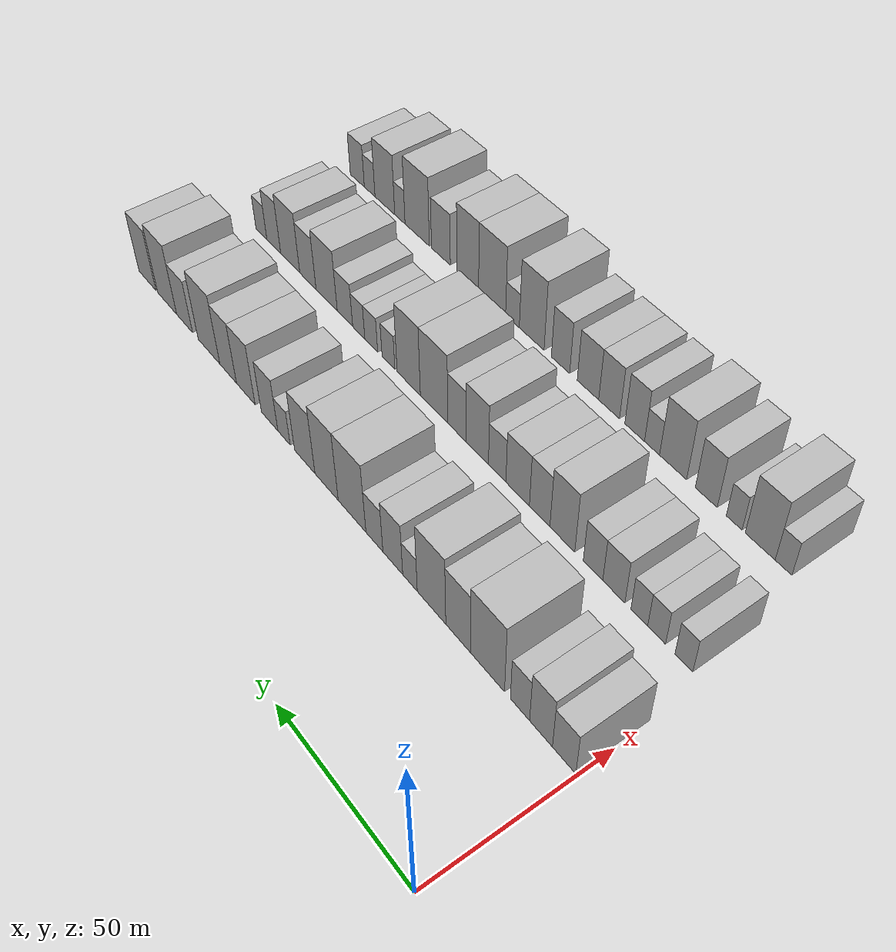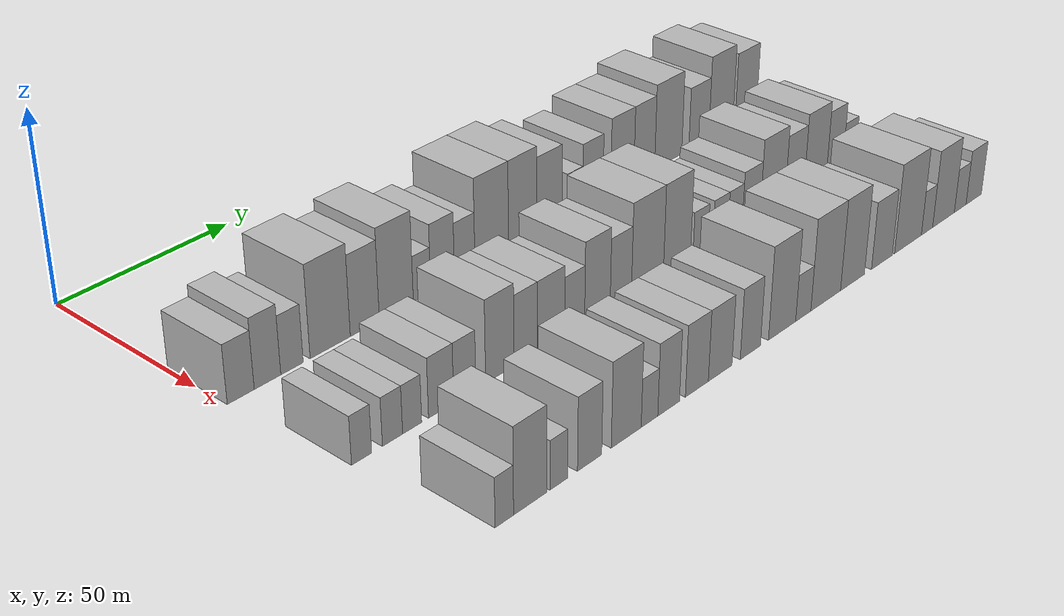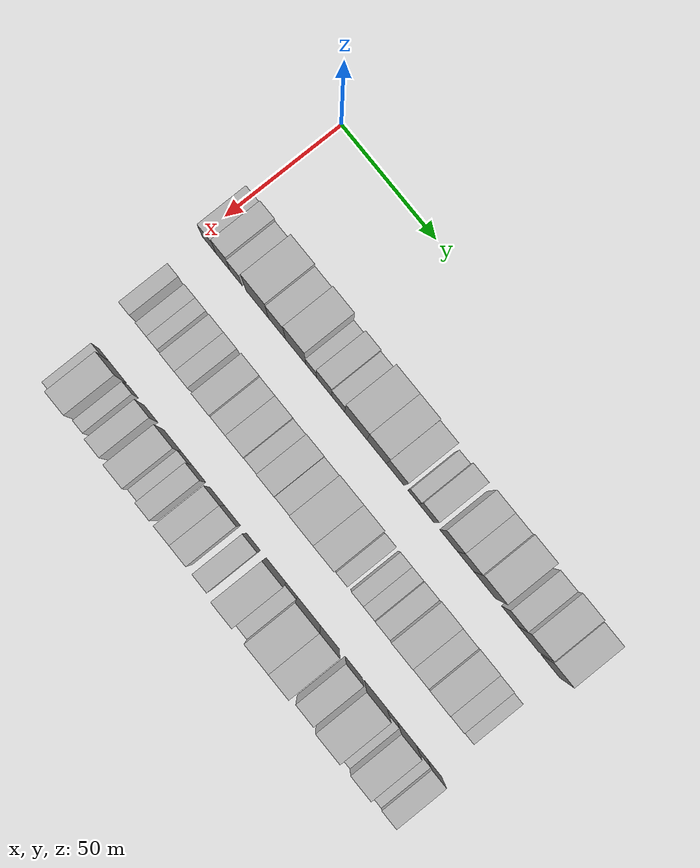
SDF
<sdf version="1.6">
 <world name="default">
  <model name="building_41">
   <static>1</static>
   <pose>50.0000 4.1804 0 0.000000 0.000000 0.000000</pose>
   <link name="link">
    <pose>0 0 7.50 0 0 0</pose>
    <collision name="collision"><geometry><box><size>20.0000 7.4123 15.0000</size></box></geometry></collision>
    <visual name="visual">
     <cast_shadows>0</cast_shadows>
     <geometry><box><size>20.0000 7.4123 15.0000</size></box></geometry>
     <material>
      <script>
       <uri>model://HANNAS_wall/materials/scripts</uri>
       <uri>model://HANNAS_wall/materials/textures</uri>
       <name>vrc/HANNAS_wall</name>
      </script>
     </material>
    </visual>
   </link>
  </model>
  <model name="building_42">
   <static>1</static>
   <pose>50.0000 11.6138 0 0.000000 0.000000 0.000000</pose>
   <link name="link">
    <pose>0 0 9.00 0 0 0</pose>
    <collision name="collision"><geometry><box><size>20.0000 7.4545 18.0000</size></box></geometry></collision>
    <visual name="visual">
     <cast_shadows>0</cast_shadows>
     <geometry><box><size>20.0000 7.4545 18.0000</size></box></geometry>
     <material>
      <script>
       <uri>model://HANNAS_wall/materials/scripts</uri>
       <uri>model://HANNAS_wall/materials/textures</uri>
       <name>vrc/HANNAS_wall</name>
      </script>
     </material>
    </visual>
   </link>
  </model>
  <model name="building_43">
   <static>1</static>
   <pose>50.0000 18.5593 0 0.000000 0.000000 0.000000</pose>
   <link name="link">
    <pose>0 0 7.50 0 0 0</pose>
    <collision name="collision"><geometry><box><size>20.0000 6.4366 15.0000</size></box></geometry></collision>
    <visual name="visual">
     <cast_shadows>0</cast_shadows>
     <geometry><box><size>20.0000 6.4366 15.0000</size></box></geometry>
     <material>
      <script>
       <uri>model://HANNAS_wall/materials/scripts</uri>
       <uri>model://HANNAS_wall/materials/textures</uri>
       <name>vrc/HANNAS_wall</name>
      </script>
     </material>
    </visual>
   </link>
  </model>
  <model name="building_44">
   <static>1</static>
   <pose>50.0000 29.7542 0 0.000000 0.000000 0.000000</pose>
   <link name="link">
    <pose>0 0 12.00 0 0 0</pose>
    <collision name="collision"><geometry><box><size>20.0000 11.9531 24.0000</size></box></geometry></collision>
    <visual name="visual">
     <cast_shadows>0</cast_shadows>
     <geometry><box><size>20.0000 11.9531 24.0000</size></box></geometry>
     <material>
      <script>
       <uri>model://HANNAS_wall/materials/scripts</uri>
       <uri>model://HANNAS_wall/materials/textures</uri>
       <name>vrc/HANNAS_wall</name>
      </script>
     </material>
    </visual>
   </link>
  </model>
  <model name="building_45">
   <static>1</static>
   <pose>50.0000 40.1866 0 0.000000 0.000000 0.000000</pose>
   <link name="link">
    <pose>0 0 10.50 0 0 0</pose>
    <collision name="collision"><geometry><box><size>20.0000 8.9119 21.0000</size></box></geometry></collision>
    <visual name="visual">
     <cast_shadows>0</cast_shadows>
     <geometry><box><size>20.0000 8.9119 21.0000</size></box></geometry>
     <material>
      <script>
       <uri>model://HANNAS_wall/materials/scripts</uri>
       <uri>model://HANNAS_wall/materials/textures</uri>
       <name>vrc/HANNAS_wall</name>
      </script>
     </material>
    </visual>
   </link>
  </model>
  <model name="building_46">
   <static>1</static>
   <pose>50.0000 50.0126 0 0.000000 0.000000 0.000000</pose>
   <link name="link">
    <pose>0 0 12.00 0 0 0</pose>
    <collision name="collision"><geometry><box><size>20.0000 10.7400 24.0000</size></box></geometry></collision>
    <visual name="visual">
     <cast_shadows>0</cast_shadows>
     <geometry><box><size>20.0000 10.7400 24.0000</size></box></geometry>
     <material>
      <script>
       <uri>model://HANNAS_wall/materials/scripts</uri>
       <uri>model://HANNAS_wall/materials/textures</uri>
       <name>vrc/HANNAS_wall</name>
      </script>
     </material>
    </visual>
   </link>
  </model>
  <model name="building_47">
   <static>1</static>
   <pose>50.0000 58.2081 0 0.000000 0.000000 0.000000</pose>
   <link name="link">
    <pose>0 0 6.00 0 0 0</pose>
    <collision name="collision"><geometry><box><size>20.0000 5.6510 12.0000</size></box></geometry></collision>
    <visual name="visual">
     <cast_shadows>0</cast_shadows>
     <geometry><box><size>20.0000 5.6510 12.0000</size></box></geometry>
     <material>
      <script>
       <uri>model://HANNAS_wall/materials/scripts</uri>
       <uri>model://HANNAS_wall/materials/textures</uri>
       <name>vrc/HANNAS_wall</name>
      </script>
     </material>
    </visual>
   </link>
  </model>
  <model name="building_48">
   <static>1</static>
   <pose>50.0000 64.9593 0 0.000000 0.000000 0.000000</pose>
   <link name="link">
    <pose>0 0 9.00 0 0 0</pose>
    <collision name="collision"><geometry><box><size>20.0000 7.8515 18.0000</size></box></geometry></collision>
    <visual name="visual">
     <cast_shadows>0</cast_shadows>
     <geometry><box><size>20.0000 7.8515 18.0000</size></box></geometry>
     <material>
      <script>
       <uri>model://HANNAS_wall/materials/scripts</uri>
       <uri>model://HANNAS_wall/materials/textures</uri>
       <name>vrc/HANNAS_wall</name>
      </script>
     </material>
    </visual>
   </link>
  </model>
  <model name="building_49">
   <static>1</static>
   <pose>50.0000 72.3349 0 0.000000 0.000000 0.000000</pose>
   <link name="link">
    <pose>0 0 7.50 0 0 0</pose>
    <collision name="collision"><geometry><box><size>20.0000 6.8997 15.0000</size></box></geometry></collision>
    <visual name="visual">
     <cast_shadows>0</cast_shadows>
     <geometry><box><size>20.0000 6.8997 15.0000</size></box></geometry>
     <material>
      <script>
       <uri>model://HANNAS_wall/materials/scripts</uri>
       <uri>model://HANNAS_wall/materials/textures</uri>
       <name>vrc/HANNAS_wall</name>
      </script>
     </material>
    </visual>
   </link>
  </model>
  <model name="building_50">
   <static>1</static>
   <pose>50.0000 81.6181 0 0.000000 0.000000 0.000000</pose>
   <link name="link">
    <pose>0 0 12.00 0 0 0</pose>
    <collision name="collision"><geometry><box><size>20.0000 11.6667 24.0000</size></box></geometry></collision>
    <visual name="visual">
     <cast_shadows>0</cast_shadows>
     <geometry><box><size>20.0000 11.6667 24.0000</size></box></geometry>
     <material>
      <script>
       <uri>model://HANNAS_wall/materials/scripts</uri>
       <uri>model://HANNAS_wall/materials/textures</uri>
       <name>vrc/HANNAS_wall</name>
      </script>
     </material>
    </visual>
   </link>
  </model>
  <model name="building_51">
   <static>1</static>
   <pose>50.0000 92.5357 0 0.000000 0.000000 0.000000</pose>
   <link name="link">
    <pose>0 0 12.00 0 0 0</pose>
    <collision name="collision"><geometry><box><size>20.0000 10.1685 24.0000</size></box></geometry></collision>
    <visual name="visual">
     <cast_shadows>0</cast_shadows>
     <geometry><box><size>20.0000 10.1685 24.0000</size></box></geometry>
     <material>
      <script>
       <uri>model://HANNAS_wall/materials/scripts</uri>
       <uri>model://HANNAS_wall/materials/textures</uri>
       <name>vrc/HANNAS_wall</name>
      </script>
     </material>
    </visual>
   </link>
  </model>
  <model name="building_52">
   <static>1</static>
   <pose>50.0000 102.2050 0 0.000000 0.000000 0.000000</pose>
   <link name="link">
    <pose>0 0 10.50 0 0 0</pose>
    <collision name="collision"><geometry><box><size>20.0000 9.1701 21.0000</size></box></geometry></collision>
    <visual name="visual">
     <cast_shadows>0</cast_shadows>
     <geometry><box><size>20.0000 9.1701 21.0000</size></box></geometry>
     <material>
      <script>
       <uri>model://HANNAS_wall/materials/scripts</uri>
       <uri>model://HANNAS_wall/materials/textures</uri>
       <name>vrc/HANNAS_wall</name>
      </script>
     </material>
    </visual>
   </link>
  </model>
  <model name="building_53">
   <static>1</static>
   <pose>50.0000 111.6438 0 0.000000 0.000000 0.000000</pose>
   <link name="link">
    <pose>0 0 6.00 0 0 0</pose>
    <collision name="collision"><geometry><box><size>20.0000 5.7075 12.0000</size></box></geometry></collision>
    <visual name="visual">
     <cast_shadows>0</cast_shadows>
     <geometry><box><size>20.0000 5.7075 12.0000</size></box></geometry>
     <material>
      <script>
       <uri>model://HANNAS_wall/materials/scripts</uri>
       <uri>model://HANNAS_wall/materials/textures</uri>
       <name>vrc/HANNAS_wall</name>
      </script>
     </material>
    </visual>
   </link>
  </model>
  <model name="building_54">
   <static>1</static>
   <pose>50.0000 118.4316 0 0.000000 0.000000 0.000000</pose>
   <link name="link">
    <pose>0 0 9.00 0 0 0</pose>
    <collision name="collision"><geometry><box><size>20.0000 7.8681 18.0000</size></box></geometry></collision>
    <visual name="visual">
     <cast_shadows>0</cast_shadows>
     <geometry><box><size>20.0000 7.8681 18.0000</size></box></geometry>
     <material>
      <script>
       <uri>model://HANNAS_wall/materials/scripts</uri>
       <uri>model://HANNAS_wall/materials/textures</uri>
       <name>vrc/HANNAS_wall</name>
      </script>
     </material>
    </visual>
   </link>
  </model>
  <model name="building_55">
   <static>1</static>
   <pose>50.0000 129.9543 0 0.000000 0.000000 0.000000</pose>
   <link name="link">
    <pose>0 0 10.50 0 0 0</pose>
    <collision name="collision"><geometry><box><size>20.0000 9.1774 21.0000</size></box></geometry></collision>
    <visual name="visual">
     <cast_shadows>0</cast_shadows>
     <geometry><box><size>20.0000 9.1774 21.0000</size></box></geometry>
     <material>
      <script>
       <uri>model://HANNAS_wall/materials/scripts</uri>
       <uri>model://HANNAS_wall/materials/textures</uri>
       <name>vrc/HANNAS_wall</name>
      </script>
     </material>
    </visual>
   </link>
  </model>
  <model name="building_56">
   <static>1</static>
   <pose>50.0000 138.7671 0 0.000000 0.000000 0.000000</pose>
   <link name="link">
    <pose>0 0 10.50 0 0 0</pose>
    <collision name="collision"><geometry><box><size>20.0000 8.4482 21.0000</size></box></geometry></collision>
    <visual name="visual">
     <cast_shadows>0</cast_shadows>
     <geometry><box><size>20.0000 8.4482 21.0000</size></box></geometry>
     <material>
      <script>
       <uri>model://HANNAS_wall/materials/scripts</uri>
       <uri>model://HANNAS_wall/materials/textures</uri>
       <name>vrc/HANNAS_wall</name>
      </script>
     </material>
    </visual>
   </link>
  </model>
  <model name="building_57">
   <static>1</static>
   <pose>50.0000 148.6422 0 0.000000 0.000000 0.000000</pose>
   <link name="link">
    <pose>0 0 12.00 0 0 0</pose>
    <collision name="collision"><geometry><box><size>20.0000 11.3020 24.0000</size></box></geometry></collision>
    <visual name="visual">
     <cast_shadows>0</cast_shadows>
     <geometry><box><size>20.0000 11.3020 24.0000</size></box></geometry>
     <material>
      <script>
       <uri>model://HANNAS_wall/materials/scripts</uri>
       <uri>model://HANNAS_wall/materials/textures</uri>
       <name>vrc/HANNAS_wall</name>
      </script>
     </material>
    </visual>
   </link>
  </model>
  <model name="building_58">
   <static>1</static>
   <pose>50.0000 161.5880 0 0.000000 0.000000 0.000000</pose>
   <link name="link">
    <pose>0 0 9.00 0 0 0</pose>
    <collision name="collision"><geometry><box><size>20.0000 8.5896 18.0000</size></box></geometry></collision>
    <visual name="visual">
     <cast_shadows>0</cast_shadows>
     <geometry><box><size>20.0000 8.5896 18.0000</size></box></geometry>
     <material>
      <script>
       <uri>model://HANNAS_wall/materials/scripts</uri>
       <uri>model://HANNAS_wall/materials/textures</uri>
       <name>vrc/HANNAS_wall</name>
      </script>
     </material>
    </visual>
   </link>
  </model>
  <model name="building_59">
   <static>1</static>
   <pose>50.0000 171.1876 0 0.000000 0.000000 0.000000</pose>
   <link name="link">
    <pose>0 0 12.00 0 0 0</pose>
    <collision name="collision"><geometry><box><size>20.0000 10.6096 24.0000</size></box></geometry></collision>
    <visual name="visual">
     <cast_shadows>0</cast_shadows>
     <geometry><box><size>20.0000 10.6096 24.0000</size></box></geometry>
     <material>
      <script>
       <uri>model://HANNAS_wall/materials/scripts</uri>
       <uri>model://HANNAS_wall/materials/textures</uri>
       <name>vrc/HANNAS_wall</name>
      </script>
     </material>
    </visual>
   </link>
  </model>
  <model name="building_60">
   <static>1</static>
   <pose>50.0000 182.3548 0 0.000000 0.000000 0.000000</pose>
   <link name="link">
    <pose>0 0 10.50 0 0 0</pose>
    <collision name="collision"><geometry><box><size>20.0000 9.7249 21.0000</size></box></geometry></collision>
    <visual name="visual">
     <cast_shadows>0</cast_shadows>
     <geometry><box><size>20.0000 9.7249 21.0000</size></box></geometry>
     <material>
      <script>
       <uri>model://HANNAS_wall/materials/scripts</uri>
       <uri>model://HANNAS_wall/materials/textures</uri>
       <name>vrc/HANNAS_wall</name>
      </script>
     </material>
    </visual>
   </link>
  </model>
  <model name="building_123">
   <static>1</static>
   <pose>85.0000 6.3216 0 0.000000 0.000000 0.000000</pose>
   <link name="link">
    <pose>0 0 6.00 0 0 0</pose>
    <collision name="collision"><geometry><box><size>20.0000 5.5691 12.0000</size></box></geometry></collision>
    <visual name="visual">
     <cast_shadows>0</cast_shadows>
     <geometry><box><size>20.0000 5.5691 12.0000</size></box></geometry>
     <material>
      <script>
       <uri>model://HANNAS_wall/materials/scripts</uri>
       <uri>model://HANNAS_wall/materials/textures</uri>
       <name>vrc/HANNAS_wall</name>
      </script>
     </material>
    </visual>
   </link>
  </model>
  <model name="building_124">
   <static>1</static>
   <pose>85.0000 14.9784 0 0.000000 0.000000 0.000000</pose>
   <link name="link">
    <pose>0 0 6.00 0 0 0</pose>
    <collision name="collision"><geometry><box><size>20.0000 5.7443 12.0000</size></box></geometry></collision>
    <visual name="visual">
     <cast_shadows>0</cast_shadows>
     <geometry><box><size>20.0000 5.7443 12.0000</size></box></geometry>
     <material>
      <script>
       <uri>model://HANNAS_wall/materials/scripts</uri>
       <uri>model://HANNAS_wall/materials/textures</uri>
       <name>vrc/HANNAS_wall</name>
      </script>
     </material>
    </visual>
   </link>
  </model>
  <model name="building_125">
   <static>1</static>
   <pose>85.0000 20.6097 0 0.000000 0.000000 0.000000</pose>
   <link name="link">
    <pose>0 0 6.00 0 0 0</pose>
    <collision name="collision"><geometry><box><size>20.0000 5.5184 12.0000</size></box></geometry></collision>
    <visual name="visual">
     <cast_shadows>0</cast_shadows>
     <geometry><box><size>20.0000 5.5184 12.0000</size></box></geometry>
     <material>
      <script>
       <uri>model://HANNAS_wall/materials/scripts</uri>
       <uri>model://HANNAS_wall/materials/textures</uri>
       <name>vrc/HANNAS_wall</name>
      </script>
     </material>
    </visual>
   </link>
  </model>
  <model name="building_126">
   <static>1</static>
   <pose>85.0000 29.1153 0 0.000000 0.000000 0.000000</pose>
   <link name="link">
    <pose>0 0 7.50 0 0 0</pose>
    <collision name="collision"><geometry><box><size>20.0000 7.4926 15.0000</size></box></geometry></collision>
    <visual name="visual">
     <cast_shadows>0</cast_shadows>
     <geometry><box><size>20.0000 7.4926 15.0000</size></box></geometry>
     <material>
      <script>
       <uri>model://HANNAS_wall/materials/scripts</uri>
       <uri>model://HANNAS_wall/materials/textures</uri>
       <name>vrc/HANNAS_wall</name>
      </script>
     </material>
    </visual>
   </link>
  </model>
  <model name="building_127">
   <static>1</static>
   <pose>85.0000 36.2436 0 0.000000 0.000000 0.000000</pose>
   <link name="link">
    <pose>0 0 7.50 0 0 0</pose>
    <collision name="collision"><geometry><box><size>20.0000 6.7639 15.0000</size></box></geometry></collision>
    <visual name="visual">
     <cast_shadows>0</cast_shadows>
     <geometry><box><size>20.0000 6.7639 15.0000</size></box></geometry>
     <material>
      <script>
       <uri>model://HANNAS_wall/materials/scripts</uri>
       <uri>model://HANNAS_wall/materials/textures</uri>
       <name>vrc/HANNAS_wall</name>
      </script>
     </material>
    </visual>
   </link>
  </model>
  <model name="building_128">
   <static>1</static>
   <pose>85.0000 47.1113 0 0.000000 0.000000 0.000000</pose>
   <link name="link">
    <pose>0 0 10.50 0 0 0</pose>
    <collision name="collision"><geometry><box><size>20.0000 8.9716 21.0000</size></box></geometry></collision>
    <visual name="visual">
     <cast_shadows>0</cast_shadows>
     <geometry><box><size>20.0000 8.9716 21.0000</size></box></geometry>
     <material>
      <script>
       <uri>model://HANNAS_wall/materials/scripts</uri>
       <uri>model://HANNAS_wall/materials/textures</uri>
       <name>vrc/HANNAS_wall</name>
      </script>
     </material>
    </visual>
   </link>
  </model>
  <model name="building_129">
   <static>1</static>
   <pose>85.0000 55.3937 0 0.000000 0.000000 0.000000</pose>
   <link name="link">
    <pose>0 0 9.00 0 0 0</pose>
    <collision name="collision"><geometry><box><size>20.0000 7.5933 18.0000</size></box></geometry></collision>
    <visual name="visual">
     <cast_shadows>0</cast_shadows>
     <geometry><box><size>20.0000 7.5933 18.0000</size></box></geometry>
     <material>
      <script>
       <uri>model://HANNAS_wall/materials/scripts</uri>
       <uri>model://HANNAS_wall/materials/textures</uri>
       <name>vrc/HANNAS_wall</name>
      </script>
     </material>
    </visual>
   </link>
  </model>
  <model name="building_130">
   <static>1</static>
   <pose>85.0000 63.6753 0 0.000000 0.000000 0.000000</pose>
   <link name="link">
    <pose>0 0 9.00 0 0 0</pose>
    <collision name="collision"><geometry><box><size>20.0000 8.9697 18.0000</size></box></geometry></collision>
    <visual name="visual">
     <cast_shadows>0</cast_shadows>
     <geometry><box><size>20.0000 8.9697 18.0000</size></box></geometry>
     <material>
      <script>
       <uri>model://HANNAS_wall/materials/scripts</uri>
       <uri>model://HANNAS_wall/materials/textures</uri>
       <name>vrc/HANNAS_wall</name>
      </script>
     </material>
    </visual>
   </link>
  </model>
  <model name="building_131">
   <static>1</static>
   <pose>85.0000 71.5664 0 0.000000 0.000000 0.000000</pose>
   <link name="link">
    <pose>0 0 7.50 0 0 0</pose>
    <collision name="collision"><geometry><box><size>20.0000 6.8126 15.0000</size></box></geometry></collision>
    <visual name="visual">
     <cast_shadows>0</cast_shadows>
     <geometry><box><size>20.0000 6.8126 15.0000</size></box></geometry>
     <material>
      <script>
       <uri>model://HANNAS_wall/materials/scripts</uri>
       <uri>model://HANNAS_wall/materials/textures</uri>
       <name>vrc/HANNAS_wall</name>
      </script>
     </material>
    </visual>
   </link>
  </model>
  <model name="building_132">
   <static>1</static>
   <pose>85.0000 79.4187 0 0.000000 0.000000 0.000000</pose>
   <link name="link">
    <pose>0 0 10.50 0 0 0</pose>
    <collision name="collision"><geometry><box><size>20.0000 8.8918 21.0000</size></box></geometry></collision>
    <visual name="visual">
     <cast_shadows>0</cast_shadows>
     <geometry><box><size>20.0000 8.8918 21.0000</size></box></geometry>
     <material>
      <script>
       <uri>model://HANNAS_wall/materials/scripts</uri>
       <uri>model://HANNAS_wall/materials/textures</uri>
       <name>vrc/HANNAS_wall</name>
      </script>
     </material>
    </visual>
   </link>
  </model>
  <model name="building_133">
   <static>1</static>
   <pose>85.0000 87.6587 0 0.000000 0.000000 0.000000</pose>
   <link name="link">
    <pose>0 0 9.00 0 0 0</pose>
    <collision name="collision"><geometry><box><size>20.0000 7.5883 18.0000</size></box></geometry></collision>
    <visual name="visual">
     <cast_shadows>0</cast_shadows>
     <geometry><box><size>20.0000 7.5883 18.0000</size></box></geometry>
     <material>
      <script>
       <uri>model://HANNAS_wall/materials/scripts</uri>
       <uri>model://HANNAS_wall/materials/textures</uri>
       <name>vrc/HANNAS_wall</name>
      </script>
     </material>
    </visual>
   </link>
  </model>
  <model name="building_134">
   <static>1</static>
   <pose>85.0000 97.3189 0 0.000000 0.000000 0.000000</pose>
   <link name="link">
    <pose>0 0 12.00 0 0 0</pose>
    <collision name="collision"><geometry><box><size>20.0000 11.7320 24.0000</size></box></geometry></collision>
    <visual name="visual">
     <cast_shadows>0</cast_shadows>
     <geometry><box><size>20.0000 11.7320 24.0000</size></box></geometry>
     <material>
      <script>
       <uri>model://HANNAS_wall/materials/scripts</uri>
       <uri>model://HANNAS_wall/materials/textures</uri>
       <name>vrc/HANNAS_wall</name>
      </script>
     </material>
    </visual>
   </link>
  </model>
  <model name="building_135">
   <static>1</static>
   <pose>85.0000 108.3086 0 0.000000 0.000000 0.000000</pose>
   <link name="link">
    <pose>0 0 12.00 0 0 0</pose>
    <collision name="collision"><geometry><box><size>20.0000 10.2475 24.0000</size></box></geometry></collision>
    <visual name="visual">
     <cast_shadows>0</cast_shadows>
     <geometry><box><size>20.0000 10.2475 24.0000</size></box></geometry>
     <material>
      <script>
       <uri>model://HANNAS_wall/materials/scripts</uri>
       <uri>model://HANNAS_wall/materials/textures</uri>
       <name>vrc/HANNAS_wall</name>
      </script>
     </material>
    </visual>
   </link>
  </model>
  <model name="building_136">
   <static>1</static>
   <pose>85.0000 117.3329 0 0.000000 0.000000 0.000000</pose>
   <link name="link">
    <pose>0 0 6.00 0 0 0</pose>
    <collision name="collision"><geometry><box><size>20.0000 5.8012 12.0000</size></box></geometry></collision>
    <visual name="visual">
     <cast_shadows>0</cast_shadows>
     <geometry><box><size>20.0000 5.8012 12.0000</size></box></geometry>
     <material>
      <script>
       <uri>model://HANNAS_wall/materials/scripts</uri>
       <uri>model://HANNAS_wall/materials/textures</uri>
       <name>vrc/HANNAS_wall</name>
      </script>
     </material>
    </visual>
   </link>
  </model>
  <model name="building_137">
   <static>1</static>
   <pose>85.0000 125.2217 0 0.000000 0.000000 0.000000</pose>
   <link name="link">
    <pose>0 0 6.00 0 0 0</pose>
    <collision name="collision"><geometry><box><size>20.0000 5.9764 12.0000</size></box></geometry></collision>
    <visual name="visual">
     <cast_shadows>0</cast_shadows>
     <geometry><box><size>20.0000 5.9764 12.0000</size></box></geometry>
     <material>
      <script>
       <uri>model://HANNAS_wall/materials/scripts</uri>
       <uri>model://HANNAS_wall/materials/textures</uri>
       <name>vrc/HANNAS_wall</name>
      </script>
     </material>
    </visual>
   </link>
  </model>
  <model name="building_138">
   <static>1</static>
   <pose>85.0000 131.0727 0 0.000000 0.000000 0.000000</pose>
   <link name="link">
    <pose>0 0 6.00 0 0 0</pose>
    <collision name="collision"><geometry><box><size>20.0000 5.7257 12.0000</size></box></geometry></collision>
    <visual name="visual">
     <cast_shadows>0</cast_shadows>
     <geometry><box><size>20.0000 5.7257 12.0000</size></box></geometry>
     <material>
      <script>
       <uri>model://HANNAS_wall/materials/scripts</uri>
       <uri>model://HANNAS_wall/materials/textures</uri>
       <name>vrc/HANNAS_wall</name>
      </script>
     </material>
    </visual>
   </link>
  </model>
  <model name="building_139">
   <static>1</static>
   <pose>85.0000 137.6474 0 0.000000 0.000000 0.000000</pose>
   <link name="link">
    <pose>0 0 7.50 0 0 0</pose>
    <collision name="collision"><geometry><box><size>20.0000 7.4237 15.0000</size></box></geometry></collision>
    <visual name="visual">
     <cast_shadows>0</cast_shadows>
     <geometry><box><size>20.0000 7.4237 15.0000</size></box></geometry>
     <material>
      <script>
       <uri>model://HANNAS_wall/materials/scripts</uri>
       <uri>model://HANNAS_wall/materials/textures</uri>
       <name>vrc/HANNAS_wall</name>
      </script>
     </material>
    </visual>
   </link>
  </model>
  <model name="building_140">
   <static>1</static>
   <pose>85.0000 146.6055 0 0.000000 0.000000 0.000000</pose>
   <link name="link">
    <pose>0 0 10.50 0 0 0</pose>
    <collision name="collision"><geometry><box><size>20.0000 10.4926 21.0000</size></box></geometry></collision>
    <visual name="visual">
     <cast_shadows>0</cast_shadows>
     <geometry><box><size>20.0000 10.4926 21.0000</size></box></geometry>
     <material>
      <script>
       <uri>model://HANNAS_wall/materials/scripts</uri>
       <uri>model://HANNAS_wall/materials/textures</uri>
       <name>vrc/HANNAS_wall</name>
      </script>
     </material>
    </visual>
   </link>
  </model>
  <model name="building_141">
   <static>1</static>
   <pose>85.0000 155.9814 0 0.000000 0.000000 0.000000</pose>
   <link name="link">
    <pose>0 0 9.00 0 0 0</pose>
    <collision name="collision"><geometry><box><size>20.0000 8.2592 18.0000</size></box></geometry></collision>
    <visual name="visual">
     <cast_shadows>0</cast_shadows>
     <geometry><box><size>20.0000 8.2592 18.0000</size></box></geometry>
     <material>
      <script>
       <uri>model://HANNAS_wall/materials/scripts</uri>
       <uri>model://HANNAS_wall/materials/textures</uri>
       <name>vrc/HANNAS_wall</name>
      </script>
     </material>
    </visual>
   </link>
  </model>
  <model name="building_142">
   <static>1</static>
   <pose>85.0000 165.0868 0 0.000000 0.000000 0.000000</pose>
   <link name="link">
    <pose>0 0 10.50 0 0 0</pose>
    <collision name="collision"><geometry><box><size>20.0000 9.9516 21.0000</size></box></geometry></collision>
    <visual name="visual">
     <cast_shadows>0</cast_shadows>
     <geometry><box><size>20.0000 9.9516 21.0000</size></box></geometry>
     <material>
      <script>
       <uri>model://HANNAS_wall/materials/scripts</uri>
       <uri>model://HANNAS_wall/materials/textures</uri>
       <name>vrc/HANNAS_wall</name>
      </script>
     </material>
    </visual>
   </link>
  </model>
  <model name="building_143">
   <static>1</static>
   <pose>85.0000 173.7760 0 0.000000 0.000000 0.000000</pose>
   <link name="link">
    <pose>0 0 9.00 0 0 0</pose>
    <collision name="collision"><geometry><box><size>20.0000 7.4267 18.0000</size></box></geometry></collision>
    <visual name="visual">
     <cast_shadows>0</cast_shadows>
     <geometry><box><size>20.0000 7.4267 18.0000</size></box></geometry>
     <material>
      <script>
       <uri>model://HANNAS_wall/materials/scripts</uri>
       <uri>model://HANNAS_wall/materials/textures</uri>
       <name>vrc/HANNAS_wall</name>
      </script>
     </material>
    </visual>
   </link>
  </model>
  <model name="building_144">
   <static>1</static>
   <pose>85.0000 180.4505 0 0.000000 0.000000 0.000000</pose>
   <link name="link">
    <pose>0 0 6.00 0 0 0</pose>
    <collision name="collision"><geometry><box><size>20.0000 5.9224 12.0000</size></box></geometry></collision>
    <visual name="visual">
     <cast_shadows>0</cast_shadows>
     <geometry><box><size>20.0000 5.9224 12.0000</size></box></geometry>
     <material>
      <script>
       <uri>model://HANNAS_wall/materials/scripts</uri>
       <uri>model://HANNAS_wall/materials/textures</uri>
       <name>vrc/HANNAS_wall</name>
      </script>
     </material>
    </visual>
   </link>
  </model>
  <model name="building_210">
   <static>1</static>
   <pose>120.0000 11.0352 0 0.000000 0.000000 0.000000</pose>
   <link name="link">
    <pose>0 0 6.00 0 0 0</pose>
    <collision name="collision"><geometry><box><size>20.0000 5.2346 12.0000</size></box></geometry></collision>
    <visual name="visual">
     <cast_shadows>0</cast_shadows>
     <geometry><box><size>20.0000 5.2346 12.0000</size></box></geometry>
     <material>
      <script>
       <uri>model://HANNAS_wall/materials/scripts</uri>
       <uri>model://HANNAS_wall/materials/textures</uri>
       <name>vrc/HANNAS_wall</name>
      </script>
     </material>
    </visual>
   </link>
  </model>
  <model name="building_211">
   <static>1</static>
   <pose>120.0000 18.4384 0 0.000000 0.000000 0.000000</pose>
   <link name="link">
    <pose>0 0 10.50 0 0 0</pose>
    <collision name="collision"><geometry><box><size>20.0000 9.5719 21.0000</size></box></geometry></collision>
    <visual name="visual">
     <cast_shadows>0</cast_shadows>
     <geometry><box><size>20.0000 9.5719 21.0000</size></box></geometry>
     <material>
      <script>
       <uri>model://HANNAS_wall/materials/scripts</uri>
       <uri>model://HANNAS_wall/materials/textures</uri>
       <name>vrc/HANNAS_wall</name>
      </script>
     </material>
    </visual>
   </link>
  </model>
  <model name="building_212">
   <static>1</static>
   <pose>120.0000 26.8362 0 0.000000 0.000000 0.000000</pose>
   <link name="link">
    <pose>0 0 6.00 0 0 0</pose>
    <collision name="collision"><geometry><box><size>20.0000 5.2237 12.0000</size></box></geometry></collision>
    <visual name="visual">
     <cast_shadows>0</cast_shadows>
     <geometry><box><size>20.0000 5.2237 12.0000</size></box></geometry>
     <material>
      <script>
       <uri>model://HANNAS_wall/materials/scripts</uri>
       <uri>model://HANNAS_wall/materials/textures</uri>
       <name>vrc/HANNAS_wall</name>
      </script>
     </material>
    </visual>
   </link>
  </model>
  <model name="building_213">
   <static>1</static>
   <pose>120.0000 36.1744 0 0.000000 0.000000 0.000000</pose>
   <link name="link">
    <pose>0 0 9.00 0 0 0</pose>
    <collision name="collision"><geometry><box><size>20.0000 7.4528 18.0000</size></box></geometry></collision>
    <visual name="visual">
     <cast_shadows>0</cast_shadows>
     <geometry><box><size>20.0000 7.4528 18.0000</size></box></geometry>
     <material>
      <script>
       <uri>model://HANNAS_wall/materials/scripts</uri>
       <uri>model://HANNAS_wall/materials/textures</uri>
       <name>vrc/HANNAS_wall</name>
      </script>
     </material>
    </visual>
   </link>
  </model>
  <model name="building_214">
   <static>1</static>
   <pose>120.0000 47.6897 0 0.000000 0.000000 0.000000</pose>
   <link name="link">
    <pose>0 0 10.50 0 0 0</pose>
    <collision name="collision"><geometry><box><size>20.0000 9.5777 21.0000</size></box></geometry></collision>
    <visual name="visual">
     <cast_shadows>0</cast_shadows>
     <geometry><box><size>20.0000 9.5777 21.0000</size></box></geometry>
     <material>
      <script>
       <uri>model://HANNAS_wall/materials/scripts</uri>
       <uri>model://HANNAS_wall/materials/textures</uri>
       <name>vrc/HANNAS_wall</name>
      </script>
     </material>
    </visual>
   </link>
  </model>
  <model name="building_215">
   <static>1</static>
   <pose>120.0000 55.2014 0 0.000000 0.000000 0.000000</pose>
   <link name="link">
    <pose>0 0 6.00 0 0 0</pose>
    <collision name="collision"><geometry><box><size>20.0000 5.4458 12.0000</size></box></geometry></collision>
    <visual name="visual">
     <cast_shadows>0</cast_shadows>
     <geometry><box><size>20.0000 5.4458 12.0000</size></box></geometry>
     <material>
      <script>
       <uri>model://HANNAS_wall/materials/scripts</uri>
       <uri>model://HANNAS_wall/materials/textures</uri>
       <name>vrc/HANNAS_wall</name>
      </script>
     </material>
    </visual>
   </link>
  </model>
  <model name="building_216">
   <static>1</static>
   <pose>120.0000 61.5529 0 0.000000 0.000000 0.000000</pose>
   <link name="link">
    <pose>0 0 9.00 0 0 0</pose>
    <collision name="collision"><geometry><box><size>20.0000 7.2573 18.0000</size></box></geometry></collision>
    <visual name="visual">
     <cast_shadows>0</cast_shadows>
     <geometry><box><size>20.0000 7.2573 18.0000</size></box></geometry>
     <material>
      <script>
       <uri>model://HANNAS_wall/materials/scripts</uri>
       <uri>model://HANNAS_wall/materials/textures</uri>
       <name>vrc/HANNAS_wall</name>
      </script>
     </material>
    </visual>
   </link>
  </model>
  <model name="building_217">
   <static>1</static>
   <pose>120.0000 71.1471 0 0.000000 0.000000 0.000000</pose>
   <link name="link">
    <pose>0 0 9.00 0 0 0</pose>
    <collision name="collision"><geometry><box><size>20.0000 7.9310 18.0000</size></box></geometry></collision>
    <visual name="visual">
     <cast_shadows>0</cast_shadows>
     <geometry><box><size>20.0000 7.9310 18.0000</size></box></geometry>
     <material>
      <script>
       <uri>model://HANNAS_wall/materials/scripts</uri>
       <uri>model://HANNAS_wall/materials/textures</uri>
       <name>vrc/HANNAS_wall</name>
      </script>
     </material>
    </visual>
   </link>
  </model>
  <model name="building_218">
   <static>1</static>
   <pose>120.0000 79.2992 0 0.000000 0.000000 0.000000</pose>
   <link name="link">
    <pose>0 0 9.00 0 0 0</pose>
    <collision name="collision"><geometry><box><size>20.0000 8.3731 18.0000</size></box></geometry></collision>
    <visual name="visual">
     <cast_shadows>0</cast_shadows>
     <geometry><box><size>20.0000 8.3731 18.0000</size></box></geometry>
     <material>
      <script>
       <uri>model://HANNAS_wall/materials/scripts</uri>
       <uri>model://HANNAS_wall/materials/textures</uri>
       <name>vrc/HANNAS_wall</name>
      </script>
     </material>
    </visual>
   </link>
  </model>
  <model name="building_219">
   <static>1</static>
   <pose>120.0000 90.1834 0 0.000000 0.000000 0.000000</pose>
   <link name="link">
    <pose>0 0 9.00 0 0 0</pose>
    <collision name="collision"><geometry><box><size>20.0000 7.3952 18.0000</size></box></geometry></collision>
    <visual name="visual">
     <cast_shadows>0</cast_shadows>
     <geometry><box><size>20.0000 7.3952 18.0000</size></box></geometry>
     <material>
      <script>
       <uri>model://HANNAS_wall/materials/scripts</uri>
       <uri>model://HANNAS_wall/materials/textures</uri>
       <name>vrc/HANNAS_wall</name>
      </script>
     </material>
    </visual>
   </link>
  </model>
  <model name="building_220">
   <static>1</static>
   <pose>120.0000 102.0665 0 0.000000 0.000000 0.000000</pose>
   <link name="link">
    <pose>0 0 12.00 0 0 0</pose>
    <collision name="collision"><geometry><box><size>20.0000 10.3710 24.0000</size></box></geometry></collision>
    <visual name="visual">
     <cast_shadows>0</cast_shadows>
     <geometry><box><size>20.0000 10.3710 24.0000</size></box></geometry>
     <material>
      <script>
       <uri>model://HANNAS_wall/materials/scripts</uri>
       <uri>model://HANNAS_wall/materials/textures</uri>
       <name>vrc/HANNAS_wall</name>
      </script>
     </material>
    </visual>
   </link>
  </model>
  <model name="building_221">
   <static>1</static>
   <pose>120.0000 110.2016 0 0.000000 0.000000 0.000000</pose>
   <link name="link">
    <pose>0 0 6.00 0 0 0</pose>
    <collision name="collision"><geometry><box><size>20.0000 5.8993 12.0000</size></box></geometry></collision>
    <visual name="visual">
     <cast_shadows>0</cast_shadows>
     <geometry><box><size>20.0000 5.8993 12.0000</size></box></geometry>
     <material>
      <script>
       <uri>model://HANNAS_wall/materials/scripts</uri>
       <uri>model://HANNAS_wall/materials/textures</uri>
       <name>vrc/HANNAS_wall</name>
      </script>
     </material>
    </visual>
   </link>
  </model>
  <model name="building_222">
   <static>1</static>
   <pose>120.0000 119.1013 0 0.000000 0.000000 0.000000</pose>
   <link name="link">
    <pose>0 0 12.00 0 0 0</pose>
    <collision name="collision"><geometry><box><size>20.0000 11.9001 24.0000</size></box></geometry></collision>
    <visual name="visual">
     <cast_shadows>0</cast_shadows>
     <geometry><box><size>20.0000 11.9001 24.0000</size></box></geometry>
     <material>
      <script>
       <uri>model://HANNAS_wall/materials/scripts</uri>
       <uri>model://HANNAS_wall/materials/textures</uri>
       <name>vrc/HANNAS_wall</name>
      </script>
     </material>
    </visual>
   </link>
  </model>
  <model name="building_223">
   <static>1</static>
   <pose>120.0000 129.9925 0 0.000000 0.000000 0.000000</pose>
   <link name="link">
    <pose>0 0 12.00 0 0 0</pose>
    <collision name="collision"><geometry><box><size>20.0000 9.8824 24.0000</size></box></geometry></collision>
    <visual name="visual">
     <cast_shadows>0</cast_shadows>
     <geometry><box><size>20.0000 9.8824 24.0000</size></box></geometry>
     <material>
      <script>
       <uri>model://HANNAS_wall/materials/scripts</uri>
       <uri>model://HANNAS_wall/materials/textures</uri>
       <name>vrc/HANNAS_wall</name>
      </script>
     </material>
    </visual>
   </link>
  </model>
  <model name="building_224">
   <static>1</static>
   <pose>120.0000 142.3803 0 0.000000 0.000000 0.000000</pose>
   <link name="link">
    <pose>0 0 9.00 0 0 0</pose>
    <collision name="collision"><geometry><box><size>20.0000 8.8931 18.0000</size></box></geometry></collision>
    <visual name="visual">
     <cast_shadows>0</cast_shadows>
     <geometry><box><size>20.0000 8.8931 18.0000</size></box></geometry>
     <material>
      <script>
       <uri>model://HANNAS_wall/materials/scripts</uri>
       <uri>model://HANNAS_wall/materials/textures</uri>
       <name>vrc/HANNAS_wall</name>
      </script>
     </material>
    </visual>
   </link>
  </model>
  <model name="building_225">
   <static>1</static>
   <pose>120.0000 153.7605 0 0.000000 0.000000 0.000000</pose>
   <link name="link">
    <pose>0 0 12.00 0 0 0</pose>
    <collision name="collision"><geometry><box><size>20.0000 11.8671 24.0000</size></box></geometry></collision>
    <visual name="visual">
     <cast_shadows>0</cast_shadows>
     <geometry><box><size>20.0000 11.8671 24.0000</size></box></geometry>
     <material>
      <script>
       <uri>model://HANNAS_wall/materials/scripts</uri>
       <uri>model://HANNAS_wall/materials/textures</uri>
       <name>vrc/HANNAS_wall</name>
      </script>
     </material>
    </visual>
   </link>
  </model>
  <model name="building_226">
   <static>1</static>
   <pose>120.0000 162.2529 0 0.000000 0.000000 0.000000</pose>
   <link name="link">
    <pose>0 0 6.00 0 0 0</pose>
    <collision name="collision"><geometry><box><size>20.0000 5.1177 12.0000</size></box></geometry></collision>
    <visual name="visual">
     <cast_shadows>0</cast_shadows>
     <geometry><box><size>20.0000 5.1177 12.0000</size></box></geometry>
     <material>
      <script>
       <uri>model://HANNAS_wall/materials/scripts</uri>
       <uri>model://HANNAS_wall/materials/textures</uri>
       <name>vrc/HANNAS_wall</name>
      </script>
     </material>
    </visual>
   </link>
  </model>
  <model name="building_227">
   <static>1</static>
   <pose>120.0000 169.8400 0 0.000000 0.000000 0.000000</pose>
   <link name="link">
    <pose>0 0 10.50 0 0 0</pose>
    <collision name="collision"><geometry><box><size>20.0000 10.0566 21.0000</size></box></geometry></collision>
    <visual name="visual">
     <cast_shadows>0</cast_shadows>
     <geometry><box><size>20.0000 10.0566 21.0000</size></box></geometry>
     <material>
      <script>
       <uri>model://HANNAS_wall/materials/scripts</uri>
       <uri>model://HANNAS_wall/materials/textures</uri>
       <name>vrc/HANNAS_wall</name>
      </script>
     </material>
    </visual>
   </link>
  </model>
  <model name="building_228">
   <static>1</static>
   <pose>120.0000 177.6330 0 0.000000 0.000000 0.000000</pose>
   <link name="link">
    <pose>0 0 6.00 0 0 0</pose>
    <collision name="collision"><geometry><box><size>20.0000 5.5294 12.0000</size></box></geometry></collision>
    <visual name="visual">
     <cast_shadows>0</cast_shadows>
     <geometry><box><size>20.0000 5.5294 12.0000</size></box></geometry>
     <material>
      <script>
       <uri>model://HANNAS_wall/materials/scripts</uri>
       <uri>model://HANNAS_wall/materials/textures</uri>
       <name>vrc/HANNAS_wall</name>
      </script>
     </material>
    </visual>
   </link>
  </model>
  <model name="building_229">
   <static>1</static>
   <pose>120.0000 184.0942 0 0.000000 0.000000 0.000000</pose>
   <link name="link">
    <pose>0 0 7.50 0 0 0</pose>
    <collision name="collision"><geometry><box><size>20.0000 7.3930 15.0000</size></box></geometry></collision>
    <visual name="visual">
     <cast_shadows>0</cast_shadows>
     <geometry><box><size>20.0000 7.3930 15.0000</size></box></geometry>
     <material>
      <script>
       <uri>model://HANNAS_wall/materials/scripts</uri>
       <uri>model://HANNAS_wall/materials/textures</uri>
       <name>vrc/HANNAS_wall</name>
      </script>
     </material>
    </visual>
   </link>
  </model>
 </world>
</sdf>
